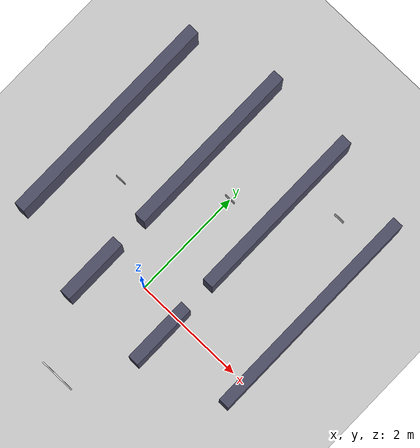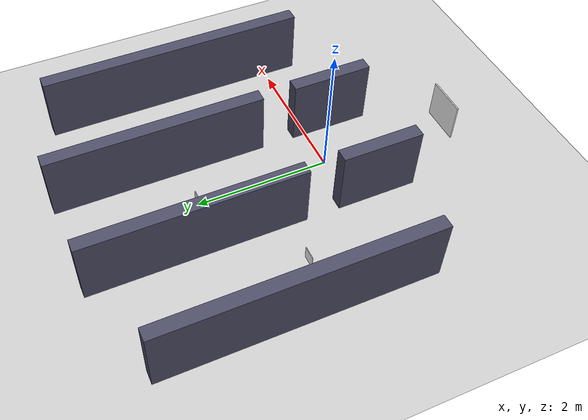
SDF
<?xml version="1.0" ?>
<sdf version="1.8">
  <world name="foraging_arena">
    <physics name="1ms" type="ignored">
      <max_step_size>0.001</max_step_size>
      <real_time_factor>1.0</real_time_factor>
    </physics>
    <plugin filename="gz-sim-physics-system" name="gz::sim::systems::Physics"></plugin>
    <plugin filename="gz-sim-user-commands-system" name="gz::sim::systems::UserCommands"></plugin>
    <plugin filename="gz-sim-scene-broadcaster-system" name="gz::sim::systems::SceneBroadcaster"></plugin>

    <light type="directional" name="sun">
      <cast_shadows>true</cast_shadows>
      <pose>0 0 10 0 0 0</pose>
      <diffuse>0.8 0.8 0.8 1</diffuse>
      <specular>0.2 0.2 0.2 1</specular>
      <attenuation><range>1000</range><constant>0.9</constant><linear>0.01</linear><quadratic>0.001</quadratic></attenuation>
      <direction>-0.5 0.1 -0.9</direction>
    </light>

    <model name="ground_plane">
      <static>true</static>
      <link name="link">
        <collision name="collision"><geometry><plane><normal>0 0 1</normal><size>15 15</size></plane></geometry></collision>
        <visual name="visual">
          <geometry><plane><normal>0 0 1</normal><size>15 15</size></plane></geometry>
          <material><ambient>0.8 0.8 0.8 1</ambient><diffuse>0.8 0.8 0.8 1</diffuse></material>
        </visual>
      </link>
    </model>

    <model name="shelf_outer_left">
      <static>true</static>
      <pose>-2.25 1.5 0.5 0 0 0</pose>
      <link name="link">
        <collision name="col"><geometry><box><size>0.2 4.0 1.0</size></box></geometry></collision>
        <visual name="vis"><geometry><box><size>0.2 4.0 1.0</size></box></geometry><material><ambient>0.3 0.3 0.4 1</ambient></material></visual>
      </link>
    </model>

    <model name="shelf_inner_left_front">
      <static>true</static>
      <pose>-0.75 -0.4 0.5 0 0 0</pose>
      <link name="link">
        <collision name="col"><geometry><box><size>0.2 1.2 1.0</size></box></geometry></collision>
        <visual name="vis"><geometry><box><size>0.2 1.2 1.0</size></box></geometry><material><ambient>0.3 0.3 0.4 1</ambient></material></visual>
      </link>
    </model>
    <model name="shelf_inner_left_back">
      <static>true</static>
      <pose>-0.75 2.3 0.5 0 0 0</pose>
      <link name="link">
        <collision name="col"><geometry><box><size>0.2 3.2 1.0</size></box></geometry></collision>
        <visual name="vis"><geometry><box><size>0.2 3.2 1.0</size></box></geometry><material><ambient>0.3 0.3 0.4 1</ambient></material></visual>
      </link>
    </model>

    <model name="shelf_inner_right_front">
      <static>true</static>
      <pose>0.75 -0.4 0.5 0 0 0</pose>
      <link name="link">
        <collision name="col"><geometry><box><size>0.2 1.2 1.0</size></box></geometry></collision>
        <visual name="vis"><geometry><box><size>0.2 1.2 1.0</size></box></geometry><material><ambient>0.3 0.3 0.4 1</ambient></material></visual>
      </link>
    </model>
    <model name="shelf_inner_right_back">
      <static>true</static>
      <pose>0.75 2.3 0.5 0 0 0</pose>
      <link name="link">
        <collision name="col"><geometry><box><size>0.2 3.2 1.0</size></box></geometry></collision>
        <visual name="vis"><geometry><box><size>0.2 3.2 1.0</size></box></geometry><material><ambient>0.3 0.3 0.4 1</ambient></material></visual>
      </link>
    </model>

    <model name="shelf_outer_right">
      <static>true</static>
      <pose>2.25 1.5 0.5 0 0 0</pose>
      <link name="link">
        <collision name="col"><geometry><box><size>0.2 4.0 1.0</size></box></geometry></collision>
        <visual name="vis"><geometry><box><size>0.2 4.0 1.0</size></box></geometry><material><ambient>0.3 0.3 0.4 1</ambient></material></visual>
      </link>
    </model>

    <include><uri>model://aruco_res1</uri><name>resource_1</name><pose>-1.5 1.0 0.1 0 1.5708 1.5708</pose></include>
    <include><uri>model://aruco_res2</uri><name>resource_3</name><pose>0.0 2.0 0.1 0 1.5708 1.5708</pose></include>
    <include><uri>model://aruco_res3</uri><name>resource_2</name><pose>1.5 3.0 0.1 0 1.5708 1.5708</pose></include>

    <include><uri>model://aruco_home</uri><name>home_base</name><pose>0.0 -2.0 0.3 0 1.5708 1.5708</pose></include>
  </world>
</sdf>

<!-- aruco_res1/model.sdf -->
<sdf version="1.8">
  <model name="aruco_res1">
    <static>true</static>
    <link name="link">
      <visual name="visual">
        <geometry><box><size>0.2 0.2 0.01</size></box></geometry>
        <material><diffuse>1 1 1 1</diffuse><pbr><metal><albedo_map>model://aruco_res1/materials/textures/marker_1.png</albedo_map></metal></pbr></material>
      </visual>
      <collision name="collision">
        <geometry><box><size>0.2 0.2 0.01</size></box></geometry>
      </collision>
    </link>
  </model>
</sdf>

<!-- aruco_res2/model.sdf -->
<sdf version="1.8">
  <model name="aruco_res2">
    <static>true</static>
    <link name="link">
      <visual name="visual">
        <geometry><box><size>0.2 0.2 0.01</size></box></geometry>
        <material><diffuse>1 1 1 1</diffuse><pbr><metal><albedo_map>model://aruco_res2/materials/textures/marker_2.png</albedo_map></metal></pbr></material>
      </visual>
      <collision name="collision">
        <geometry><box><size>0.2 0.2 0.01</size></box></geometry>
      </collision>
    </link>
  </model>
</sdf>

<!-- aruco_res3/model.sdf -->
<sdf version="1.8">
  <model name="aruco_res3">
    <static>true</static>
    <link name="link">
      <visual name="visual">
        <geometry><box><size>0.2 0.2 0.01</size></box></geometry>
        <material><diffuse>1 1 1 1</diffuse><pbr><metal><albedo_map>model://aruco_res3/materials/textures/marker_3.png</albedo_map></metal></pbr></material>
      </visual>
      <collision name="collision">
        <geometry><box><size>0.2 0.2 0.01</size></box></geometry>
      </collision>
    </link>
  </model>
</sdf>

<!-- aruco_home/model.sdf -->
<sdf version="1.8">
  <model name="aruco_home">
    <static>true</static>
    <link name="link">
      <visual name="visual">
        <geometry><box><size>0.6 0.6 0.02</size></box></geometry>
        <material><diffuse>1 1 1 1</diffuse><pbr><metal><albedo_map>model://aruco_home/materials/textures/marker_0.png</albedo_map></metal></pbr></material>
      </visual>
      <collision name="collision">
        <geometry><box><size>0.6 0.6 0.02</size></box></geometry>
      </collision>
    </link>
  </model>
</sdf>
